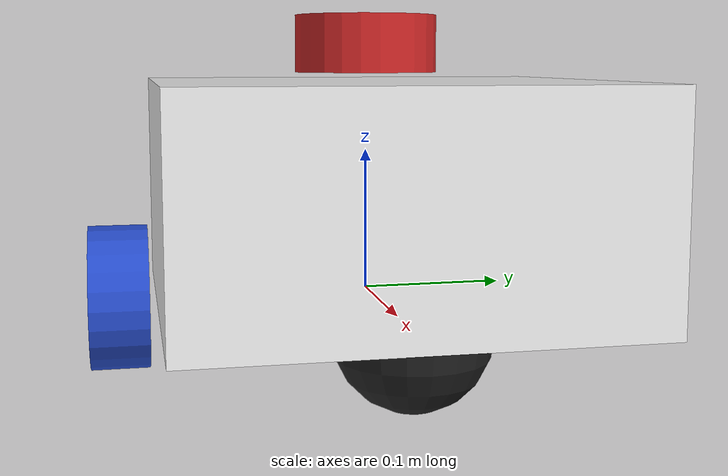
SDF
<sdf version='1.11'>
  <model name='Laris'>
  <plugin name="slotcar" filename="libslotcar.so">

      <nominal_drive_speed>0.5</nominal_drive_speed>
      <nominal_drive_acceleration>0.25</nominal_drive_acceleration>
      <max_drive_acceleration>0.75</max_drive_acceleration>

      <nominal_turn_speed>0.6</nominal_turn_speed>
      <nominal_turn_acceleration>1.5</nominal_turn_acceleration>
      <max_turn_acceleration>2.0</max_turn_acceleration>

      <tire_radius>0.1</tire_radius>
      <base_width>0.3206</base_width>

      <stop_distance>0.75</stop_distance>
      <stop_radius>0.75</stop_radius>

      <reversible>true</reversible>

      <nominal_voltage>12.0</nominal_voltage>
      <nominal_capacity>24.0</nominal_capacity>
      <charging_current>5.0</charging_current>

      <mass>20.0</mass>
      <inertia>10.0</inertia>
      <friction_coefficient>0.22</friction_coefficient>

      <nominal_power>20.0</nominal_power>

    </plugin>
    <link name='base_link'>
      <inertial>
        <pose>0.055714285714285737 0 0.07857142857142857 0 0 0</pose>
        <mass>0.69999999999999996</mass>
        <inertia>
          <ixx>0.0064169047619047617</ixx>
          <ixy>0</ixy>
          <ixz>0.0011892857142857161</ixz>
          <iyy>0.0074540476190476084</iyy>
          <iyz>0</iyz>
          <izz>0.008762142857142852</izz>
        </inertia>
      </inertial>
      <collision name='base_link_fixed_joint_lump__chassis_collision'>
        <pose>0.049999999999999989 0 0.074999999999999997 0 0 0</pose>
        <geometry>
          <box>
            <size>0.29999999999999999 0.29999999999999999 0.14999999999999999</size>
          </box>
        </geometry>
        <surface>
          <contact>
            <ode/>
          </contact>
          <friction>
            <ode/>
          </friction>
        </surface>
      </collision>
      <collision name='base_link_fixed_joint_lump__caster_wheel_collision_1'>
        <pose>0.14000000000000001 0 0 0 0 0</pose>
        <geometry>
          <sphere>
            <radius>0.050000000000000003</radius>
          </sphere>
        </geometry>
        <surface>
          <contact>
            <ode/>
          </contact>
          <friction>
            <ode>
              <mu>0.001</mu>
              <mu2>0.001</mu2>
            </ode>
          </friction>
        </surface>
      </collision>
      <collision name='base_link_fixed_joint_lump__laser_frame_collision_2'>
        <pose>0 0 0.17499999999999999 0 0 0</pose>
        <geometry>
          <cylinder>
            <length>0.040000000000000001</length>
            <radius>0.050000000000000003</radius>
          </cylinder>
        </geometry>
        <surface>
          <contact>
            <ode/>
          </contact>
          <friction>
            <ode/>
          </friction>
        </surface>
      </collision>
      <visual name='base_link_fixed_joint_lump__chassis_visual'>
        <pose>0.049999999999999989 0 0.074999999999999997 0 0 0</pose>
        <geometry>
          <box>
            <size>0.29999999999999999 0.29999999999999999 0.14999999999999999</size>
          </box>
        </geometry>
        <material>
          <script>
            <name>Gazebo/White</name>
            <uri>file://media/materials/scripts/gazebo.material</uri>
          </script>
          <diffuse>1 1 1 1</diffuse>
          <ambient>1 1 1 1</ambient>
        </material>
      </visual>
      <visual name='base_link_fixed_joint_lump__caster_wheel_visual_1'>
        <pose>0.14000000000000001 0 0 0 0 0</pose>
        <geometry>
          <sphere>
            <radius>0.050000000000000003</radius>
          </sphere>
        </geometry>
        <material>
          <script>
            <name>Gazebo/Black</name>
            <uri>file://media/materials/scripts/gazebo.material</uri>
          </script>
          <diffuse>0 0 0 1</diffuse>
          <ambient>0 0 0 1</ambient>
        </material>
      </visual>
      <visual name='base_link_fixed_joint_lump__laser_frame_visual_2'>
        <pose>0 0 0.17499999999999999 0 0 0</pose>
        <geometry>
          <cylinder>
            <length>0.040000000000000001</length>
            <radius>0.050000000000000003</radius>
          </cylinder>
        </geometry>
        <material>
          <script>
            <name>Gazebo/Red</name>
            <uri>file://media/materials/scripts/gazebo.material</uri>
          </script>
          <diffuse>1 0 0 1</diffuse>
          <ambient>1 0 0 1</ambient>
        </material>
      </visual>
      <sensor name='laser' type='ray'>
        <visualize>true</visualize>
        <update_rate>10</update_rate>
        <ray>
          <scan>
            <horizontal>
              <samples>360</samples>
              <min_angle>-3.1400000000000001</min_angle>
              <max_angle>3.1400000000000001</max_angle>
              <resolution>1</resolution>
            </horizontal>
          </scan>
          <range>
            <min>0.29999999999999999</min>
            <max>12</max>
          </range>
        </ray>
        <plugin name='laser_controller' filename='libgazebo_ros_ray_sensor.so'>
          <ros>
            <argument>~/out:=scan</argument>
          </ros>
          <output_type>sensor_msgs/LaserScan</output_type>
          <frame_name>laser_frame</frame_name>
        </plugin>
        <pose>0 0 0.17499999999999999 0 0 0</pose>
      </sensor>
    </link>
    <joint name='left_wheel_joint' type='revolute'>
      <pose relative_to='base_link'>0 0.17499999999999999 0 -1.5707963267948959 0 0</pose>
      <parent>base_link</parent>
      <child>left_wheel</child>
      <axis>
        <xyz>0 0 1</xyz>
        <limit>
          <lower>-inf</lower>
          <upper>inf</upper>
        </limit>
        <dynamics>
          <spring_reference>0</spring_reference>
          <spring_stiffness>0</spring_stiffness>
        </dynamics>
      </axis>
    </joint>
    <link name='left_wheel'>
      <pose relative_to='left_wheel_joint'>0 0 0 0 0 0</pose>
      <inertial>
        <pose>0 0 0 0 0 0</pose>
        <mass>0.10000000000000001</mass>
        <inertia>
          <ixx>7.5833333333333352e-05</ixx>
          <ixy>0</ixy>
          <ixz>0</ixz>
          <iyy>7.5833333333333352e-05</iyy>
          <iyz>0</iyz>
          <izz>0.000125</izz>
        </inertia>
      </inertial>
      <collision name='left_wheel_collision'>
        <pose>0 0 0 0 0 0</pose>
        <geometry>
          <cylinder>
            <length>0.040000000000000001</length>
            <radius>0.050000000000000003</radius>
          </cylinder>
        </geometry>
        <surface>
          <contact>
            <ode/>
          </contact>
          <friction>
            <ode/>
          </friction>
        </surface>
      </collision>
      <visual name='left_wheel_visual'>
        <pose>0 0 0 0 0 0</pose>
        <geometry>
          <cylinder>
            <length>0.040000000000000001</length>
            <radius>0.050000000000000003</radius>
          </cylinder>
        </geometry>
        <material>
          <script>
            <name>Gazebo/Blue</name>
            <uri>file://media/materials/scripts/gazebo.material</uri>
          </script>
          <diffuse>0.25 0.25 1 1</diffuse>
          <ambient>0.25 0.25 1 1</ambient>
        </material>
      </visual>
    </link>
    <joint name='right_wheel_joint' type='revolute'>
      <pose relative_to='base_link'>0 -0.17499999999999999 0 1.5707963267948959 0 0</pose>
      <parent>base_link</parent>
      <child>right_wheel</child>
      <axis>
        <xyz>0 0 -1</xyz>
        <limit>
          <lower>-inf</lower>
          <upper>inf</upper>
        </limit>
        <dynamics>
          <spring_reference>0</spring_reference>
          <spring_stiffness>0</spring_stiffness>
        </dynamics>
      </axis>
    </joint>
    <link name='right_wheel'>
      <pose relative_to='right_wheel_joint'>0 0 0 0 0 0</pose>
      <inertial>
        <pose>0 0 0 0 0 0</pose>
        <mass>0.10000000000000001</mass>
        <inertia>
          <ixx>7.5833333333333352e-05</ixx>
          <ixy>0</ixy>
          <ixz>0</ixz>
          <iyy>7.5833333333333352e-05</iyy>
          <iyz>0</iyz>
          <izz>0.000125</izz>
        </inertia>
      </inertial>
      <collision name='right_wheel_collision'>
        <pose>0 0 0 0 0 0</pose>
        <geometry>
          <cylinder>
            <length>0.040000000000000001</length>
            <radius>0.050000000000000003</radius>
          </cylinder>
        </geometry>
        <surface>
          <contact>
            <ode/>
          </contact>
          <friction>
            <ode/>
          </friction>
        </surface>
      </collision>
      <visual name='right_wheel_visual'>
        <pose>0 0 0 0 0 0</pose>
        <geometry>
          <cylinder>
            <length>0.040000000000000001</length>
            <radius>0.050000000000000003</radius>
          </cylinder>
        </geometry>
        <material>
          <script>
            <name>Gazebo/Blue</name>
            <uri>file://media/materials/scripts/gazebo.material</uri>
          </script>
          <diffuse>0.25 0.25 1 1</diffuse>
          <ambient>0.25 0.25 1 1</ambient>
        </material>
      </visual>
    </link>
    <plugin name='diff_drive' filename='libgazebo_ros_diff_drive.so'>
      <left_joint>left_wheel_joint</left_joint>
      <right_joint>right_wheel_joint</right_joint>
      <wheel_separation>0.35</wheel_separation>
      <wheel_diameter>0.1</wheel_diameter>
      <max_wheel_torque>200</max_wheel_torque>
      <max_wheel_acceleration>10.0</max_wheel_acceleration>
      <odometry_frame>odom</odometry_frame>
      <robot_base_frame>base_link</robot_base_frame>
      <publish_odom>true</publish_odom>
      <publish_odom_tf>true</publish_odom_tf>
      <publish_wheel_tf>true</publish_wheel_tf>
    </plugin>
    <frame name='caster_wheel_joint' attached_to='chassis'>
      <pose>0.23999999999999999 0 0 0 0 0</pose>
    </frame>
    <frame name='caster_wheel' attached_to='caster_wheel_joint'>
      <pose>0 0 0 0 0 0</pose>
    </frame>
    <frame name='laser_joint' attached_to='chassis'>
      <pose>0.10000000000000001 0 0.17499999999999999 0 0 0</pose>
    </frame>
    <frame name='laser_frame' attached_to='laser_joint'>
      <pose>0 0 0 0 0 0</pose>
    </frame>
    <frame name='chassis_joint' attached_to='base_link'>
      <pose>-0.10000000000000001 0 0 0 0 0</pose>
    </frame>
    <frame name='chassis' attached_to='chassis_joint'>
      <pose>0 0 0 0 0 0</pose>
    </frame>
  </model>
</sdf>
